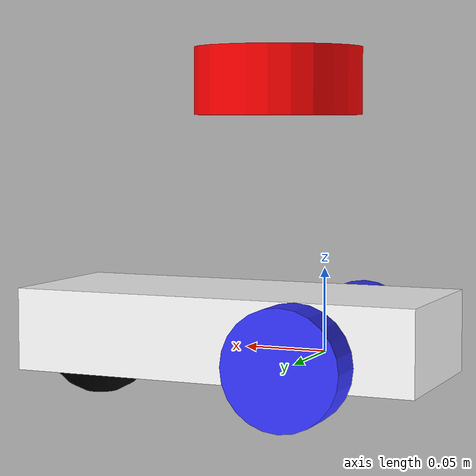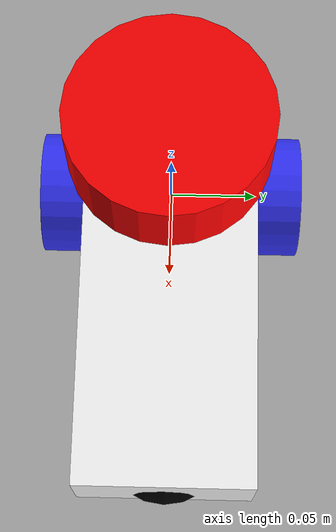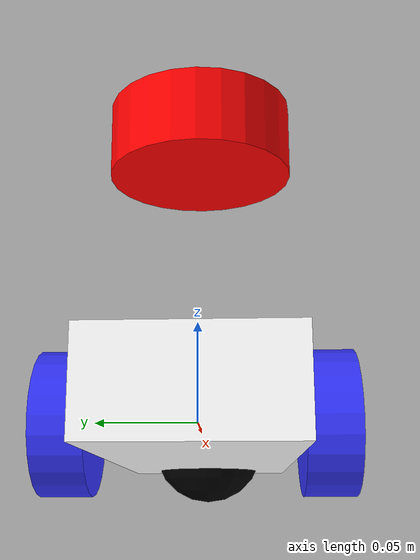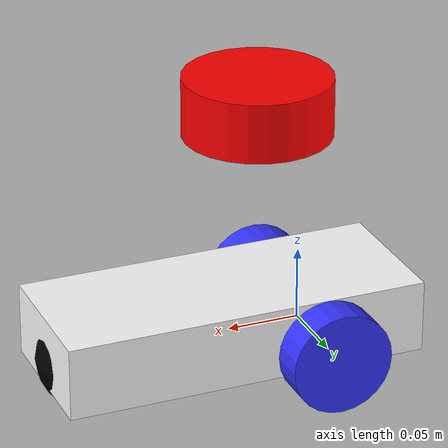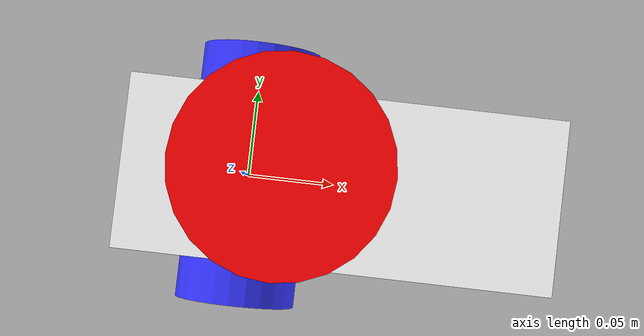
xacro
<?xml version="1.0"?>
<robot xmlns:xacro="http://www.ros.org/wiki/xacro"  name="robot">

    <xacro:arg name="use_ros2_control" default="true"/>

    <xacro:include filename="robot_core.xacro"/>

    <xacro:if value="$(arg use_ros2_control)">
        <xacro:include filename="ros2_control.xacro"/>
    </xacro:if>
    <xacro:unless value="$(arg use_ros2_control)">
        <xacro:include filename="gazebo_control.xacro"/>
    </xacro:unless>
    <xacro:include filename="lidar.xacro"/>

</robot>

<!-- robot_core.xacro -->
<robot xmlns:xacro="http://www.ros.org/wiki/xacro">
    <xacro:include filename="inertial_macros.xacro"/>

    <material name="white">
        <color rgba="1 1 1 1" />
    </material>

    <material name="orange">
        <color rgba="1 0.3 0.1 1" />
    </material>

    <material name="blue">
        <color rgba="0.2 0.2 1 1" />
    </material>

    <material name="black">
        <color rgba="0 0 0 1" />
    </material>

    <material name="red">
        <color rgba="1 0 0 1" />
    </material>

    <!--BASE LINK-->

    <link name="base_link">

    </link>

    <!--CHASSIS LINK-->

   <joint name="chassis_joint" type="fixed">
        <parent link="base_link"/>
        <child link="chassis"/>
        <origin xyz="-0.07 0 -0.015"/>
    </joint>

    <link name="chassis">

        <visual>
            <origin xyz="0.125 0 0.025" />
            <geometry>
                <box size="0.250 0.1 0.05"/>
            </geometry>
            <material name="white"/>
        </visual>

         <collision>
            <origin xyz="0.125 0 0.025" />
            <geometry>
                <box size="0.250 0.1 0.05"/>
            </geometry>
        </collision>

        <xacro:inertial_box mass="0.5" x="0.25" y="0.1" z="0.05">
            <origin xyz="0.125 0 0.025"/>
        </xacro:inertial_box>

    </link>

    <gazebo reference="chassis">
        <material>Gazebo/White</material>
    </gazebo>

    <!--LEFT WHEEL LINK-->

    <joint name="left_wheel_joint" type="continuous">
        <parent link="base_link"/>
        <child link="left_wheel"/>
        <origin xyz="0 0.0625 0" rpy="-${pi/2} 0 0"/>
        <axis xyz="0 0 1"/>
    </joint>

    <link name="left_wheel">

        <visual>
            <geometry>
                <cylinder radius="0.035" length="0.025"/>
            </geometry>
            <material name="blue"/>
        </visual>

        <collision>
            <geometry>
                <cylinder radius="0.035" length="0.025"/>
            </geometry>
        </collision>

        <xacro:inertial_cylinder mass="0.1" length="0.025" radius="0.035">
            <origin xyz="0 0 0"/>
        </xacro:inertial_cylinder>

    </link>

    <gazebo reference="left_wheel">
        <material>Gazebo/Blue</material>
    </gazebo>

     <!--RIGHT WHEEL LINK-->

    <joint name="right_wheel_joint" type="continuous">
        <parent link="base_link"/>
        <child link="right_wheel"/>
        <origin xyz="0 -0.0625 0" rpy="${pi/2} 0 0"/>
        <axis xyz="0 0 -1"/>
    </joint>

    <link name="right_wheel">

        <visual>
            <geometry>
                <cylinder radius="0.035" length="0.025"/>
            </geometry>
            <material name="blue"/>
        </visual>

        <collision>
            <geometry>
                <cylinder radius="0.035" length="0.025"/>
            </geometry>
        </collision>

        <xacro:inertial_cylinder mass="0.1" length="0.025" radius="0.035">
            <origin xyz="0 0 0"/>
        </xacro:inertial_cylinder>

    </link>

    <gazebo reference="right_wheel">
        <material>Gazebo/Blue</material>
    </gazebo>

    <!--CASTER WHEEL JOINT-->

    <joint name="caster_wheel_joint" type="fixed">
        <parent link="base_link"/>
        <child link="caster_wheel"/>
        <origin xyz="0.15 0 0" rpy="0 0 0"/>
    </joint>

    <link name="caster_wheel">
        <visual>
            <geometry>
                <sphere radius="0.035"/>
            </geometry>
            <material name="black"/>
        </visual>

        <collision>
            <geometry>
                <sphere radius="0.035"/>
            </geometry>
        </collision>

        <xacro:inertial_sphere mass="0.1" radius="0.035">
            <origin xyz="0 0 0" rpy="0 0 0"/>
        </xacro:inertial_sphere>
    </link>
    <gazebo reference="caster_wheel">
        <material>Gazebo/Black</material>
        <mu1>0.0001</mu1>
        <mu2>0.0001</mu2>
    </gazebo>

</robot>

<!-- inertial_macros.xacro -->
<robot xmlns:xacro="http://www.ros.org/wiki/xacro" >

    <!-- Specify some standard inertial calculations https://en.wikipedia.org/wiki/List_of_moments_of_inertia -->
    <!-- These make use of xacro's mathematical functionality -->

    <xacro:macro name="inertial_sphere" params="mass radius *origin">
        <inertial>
            <xacro:insert_block name="origin"/>
            <mass value="${mass}" />
            <inertia ixx="${(2/5) * mass * (radius*radius)}" ixy="0.0" ixz="0.0"
                    iyy="${(2/5) * mass * (radius*radius)}" iyz="0.0"
                    izz="${(2/5) * mass * (radius*radius)}" />
        </inertial>
    </xacro:macro>

    <xacro:macro name="inertial_box" params="mass x y z *origin">
        <inertial>
            <xacro:insert_block name="origin"/>
            <mass value="${mass}" />
            <inertia ixx="${(1/12) * mass * (y*y+z*z)}" ixy="0.0" ixz="0.0"
                    iyy="${(1/12) * mass * (x*x+z*z)}" iyz="0.0"
                    izz="${(1/12) * mass * (x*x+y*y)}" />
        </inertial>
    </xacro:macro>

    <xacro:macro name="inertial_cylinder" params="mass length radius *origin">
        <inertial>
            <xacro:insert_block name="origin"/>
            <mass value="${mass}" />
            <inertia ixx="${(1/12) * mass * (3*radius*radius + length*length)}" ixy="0.0" ixz="0.0"
                    iyy="${(1/12) * mass * (3*radius*radius + length*length)}" iyz="0.0"
                    izz="${(1/2) * mass * (radius*radius)}" />
        </inertial>
    </xacro:macro>

</robot>

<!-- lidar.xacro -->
<robot xmlns:xacro="http://www.ros.org/wiki/xacro"  name="robot">

    <joint name="laser_joint" type="fixed">
        <parent link="chassis"/>
        <child link="laser_frame"/>
        <origin xyz="0.1 0 0.175" rpy="0 0 0"/>
    </joint>

    <link name="laser_frame">

        <visual>
            <origin xyz="0 0 0" rpy="0 0 0"/>
            <geometry>
                <cylinder length="0.04" radius="0.05"/>
            </geometry>
            <material name="red"/>
        </visual>

        <collision>
            <origin xyz="0 0 0" rpy="0 0 0"/>
            <geometry>
                <cylinder length="0.04" radius="0.05"/>
            </geometry>
        </collision>

        <xacro:inertial_cylinder mass="0.1" length="0.04" radius="0.05">
            <origin xyz="0 0 0" rpy="0 0 0"/>
        </xacro:inertial_cylinder>
    </link>

   <gazebo reference="laser_frame">
      <material>Gazebo/Red</material>
      <sensor name="laser" type="ray">
        <always_on>true</always_on>
        <visualize>true</visualize>
        <update_rate>10</update_rate>

        <ray>
          <scan>
            <horizontal>
              <samples>360</samples>
              <resolution>1</resolution>
              <min_angle>-3.14</min_angle>
              <max_angle>3.14</max_angle>
            </horizontal>
          </scan>
          <range>
            <min>0.3</min>
            <max>12</max>
            <resolution>0.01</resolution>
          </range>
        </ray>

        <plugin name="scan" filename="libgazebo_ros_ray_sensor.so">
          <output_type>sensor_msgs/LaserScan</output_type>
          <frame_name>laser_frame</frame_name>
        </plugin>
      </sensor>
    </gazebo>

</robot>
